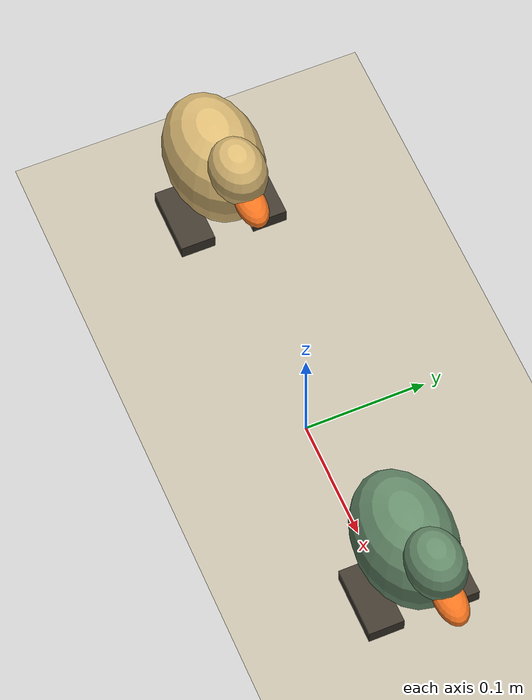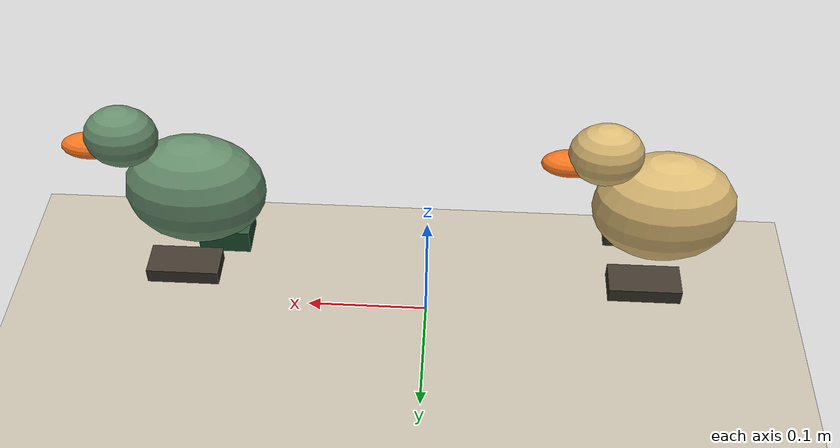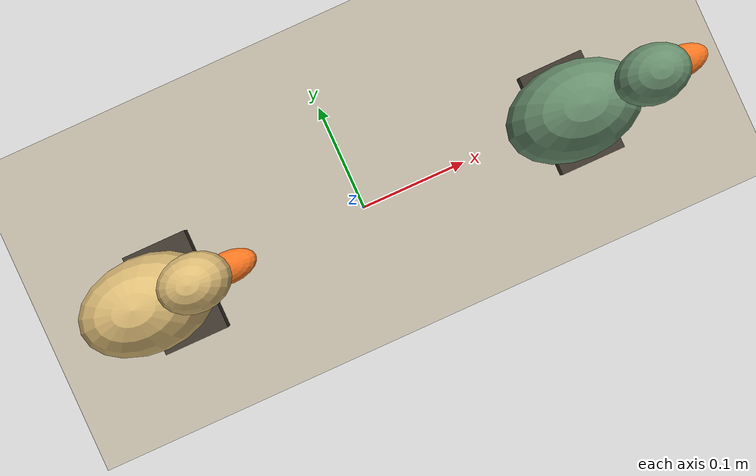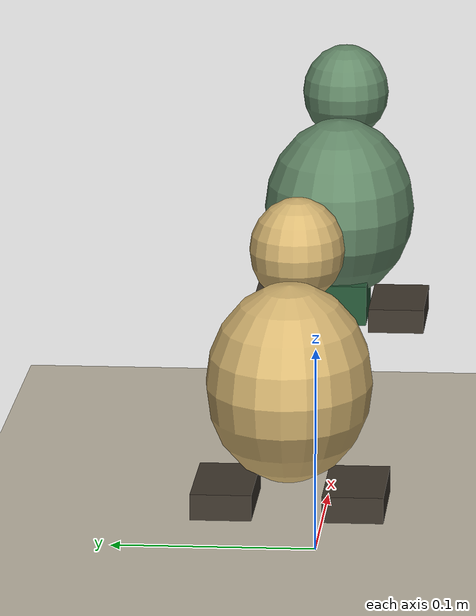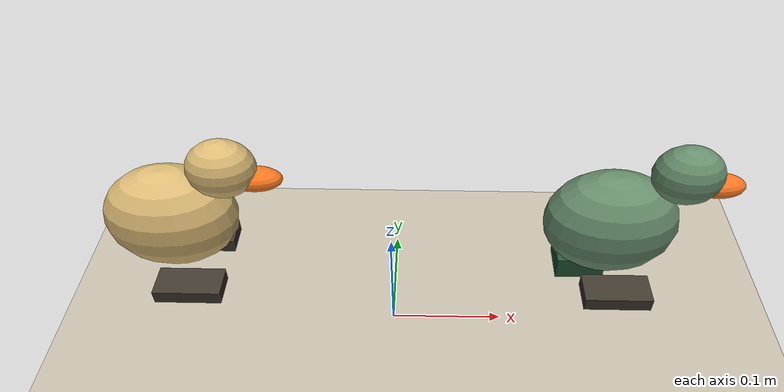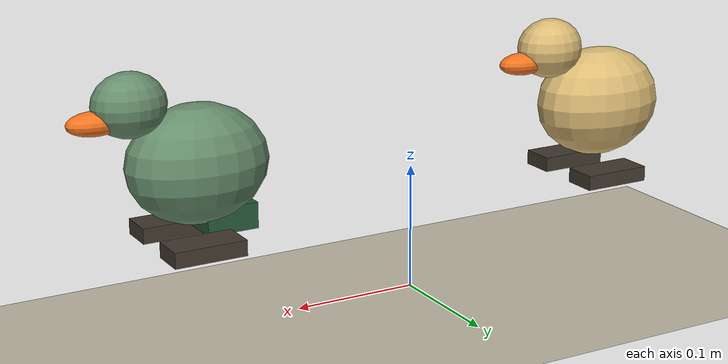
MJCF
<mujoco model="ducky_counter">
  <compiler angle="radian" autolimits="true"/>
  <option timestep="0.005" gravity="0 0 -9.81"/>
  <worldbody>
    <light pos="0.2 -0.5 1.4" dir="0 0.15 -1"/>
    <geom name="floor" type="plane" size="0 0 0.05" rgba="0.75 0.72 0.65 1"/>
    <body name="E_offboard" pos="-0.18 0 0.13">
      <freejoint/>
      <inertial pos="-0.01 0 0.00" mass="0.80" diaginertia="0.0009 0.0010 0.0008"/>
      <geom type="ellipsoid" size="0.055 0.038 0.045" rgba="0.85 0.72 0.45 1"/>
      <geom type="ellipsoid" size="0.028 0.022 0.024" pos="0.05 0 0.05" rgba="0.85 0.72 0.45 1"/>
      <geom type="ellipsoid" size="0.022 0.012 0.009" pos="0.075 0 0.04" rgba="0.95 0.45 0.12 1"/>
      <geom type="box" size="0.028 0.014 0.006" pos="0.01 0.03 -0.055" rgba="0.25 0.22 0.18 1"/>
      <geom type="box" size="0.028 0.014 0.006" pos="0.01 -0.03 -0.055" rgba="0.25 0.22 0.18 1"/>
    </body>
    <body name="F_lowballast" pos="0.18 0 0.13">
      <freejoint/>
      <inertial pos="-0.01 0 -0.02" mass="0.87" diaginertia="0.0010 0.0011 0.0009"/>
      <geom type="ellipsoid" size="0.055 0.038 0.045" rgba="0.40 0.55 0.42 1"/>
      <geom type="ellipsoid" size="0.028 0.022 0.024" pos="0.05 0 0.05" rgba="0.40 0.55 0.42 1"/>
      <geom type="ellipsoid" size="0.022 0.012 0.009" pos="0.075 0 0.04" rgba="0.95 0.45 0.12 1"/>
      <geom type="box" size="0.020 0.016 0.010" pos="-0.02 0 -0.042" rgba="0.15 0.35 0.22 1"/>
      <geom type="box" size="0.028 0.014 0.006" pos="0.01 0.03 -0.055" rgba="0.25 0.22 0.18 1"/>
      <geom type="box" size="0.028 0.014 0.006" pos="0.01 -0.03 -0.055" rgba="0.25 0.22 0.18 1"/>
    </body>
  </worldbody>
</mujoco>
